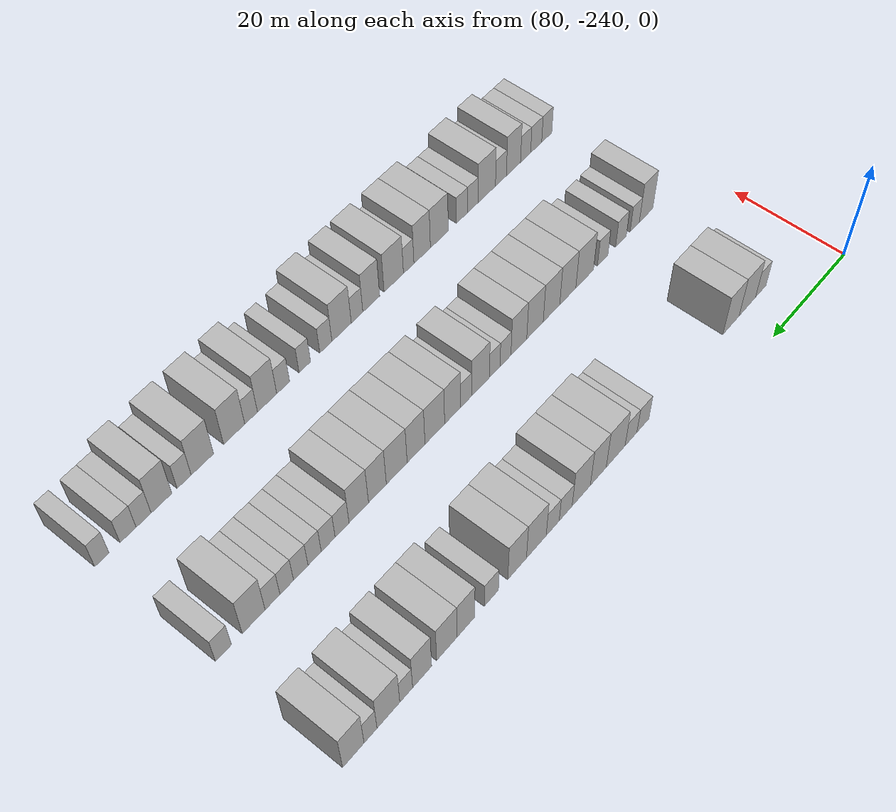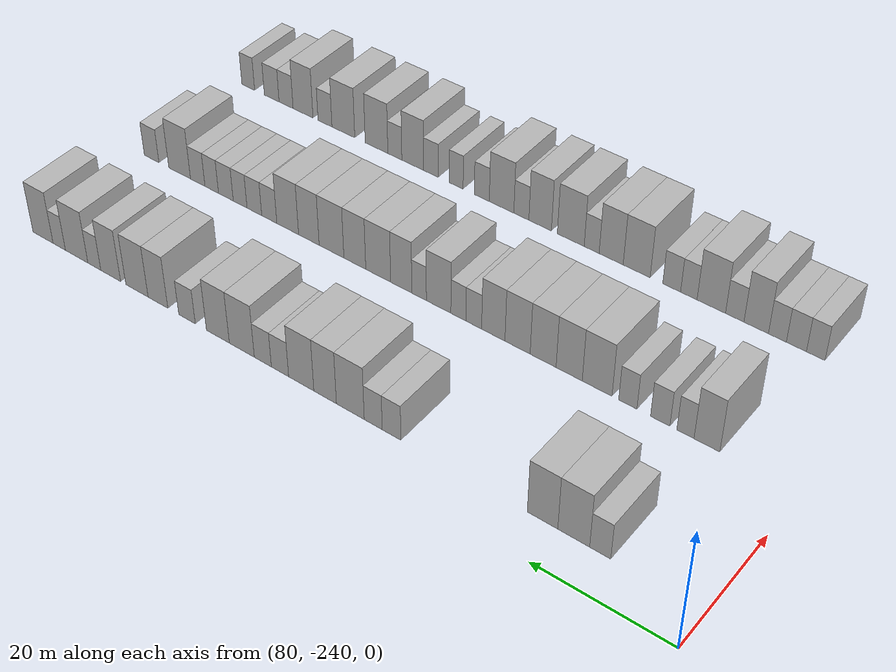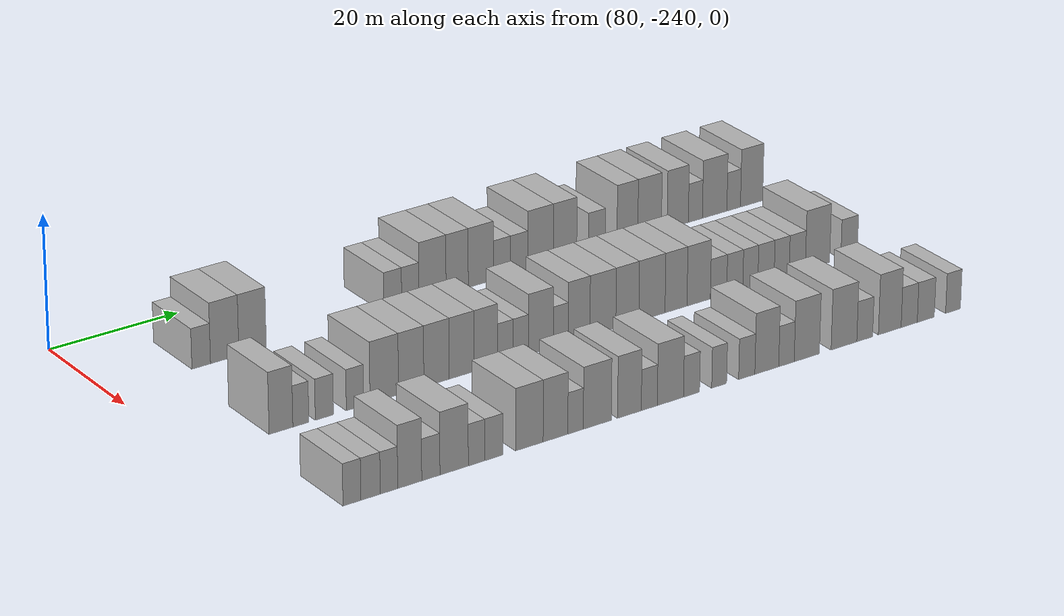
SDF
<sdf version="1.6">
 <world name="default">
  <model name="building_606">
   <static>1</static>
   <pose>91.0000 -225.8496 0 0.000000 0.000000 0.000000</pose>
   <link name="link">
    <pose>0 0 3.00 0 0 0</pose>
    <collision name="collision"><geometry><box><size>10.0000 2.8983 6.0000</size></box></geometry></collision>
    <visual name="visual">
     <cast_shadows>0</cast_shadows>
     <geometry><box><size>10.0000 2.8983 6.0000</size></box></geometry>
     <material>
      <script>
       <uri>model://HANNAS_wall/materials/scripts</uri>
       <uri>model://HANNAS_wall/materials/textures</uri>
       <name>vrc/HANNAS_wall</name>
      </script>
     </material>
    </visual>
   </link>
  </model>
  <model name="building_607">
   <static>1</static>
   <pose>91.0000 -222.1751 0 0.000000 0.000000 0.000000</pose>
   <link name="link">
    <pose>0 0 4.50 0 0 0</pose>
    <collision name="collision"><geometry><box><size>10.0000 4.4507 9.0000</size></box></geometry></collision>
    <visual name="visual">
     <cast_shadows>0</cast_shadows>
     <geometry><box><size>10.0000 4.4507 9.0000</size></box></geometry>
     <material>
      <script>
       <uri>model://HANNAS_wall/materials/scripts</uri>
       <uri>model://HANNAS_wall/materials/textures</uri>
       <name>vrc/HANNAS_wall</name>
      </script>
     </material>
    </visual>
   </link>
  </model>
  <model name="building_608">
   <static>1</static>
   <pose>91.0000 -217.7797 0 0.000000 0.000000 0.000000</pose>
   <link name="link">
    <pose>0 0 4.50 0 0 0</pose>
    <collision name="collision"><geometry><box><size>10.0000 4.3403 9.0000</size></box></geometry></collision>
    <visual name="visual">
     <cast_shadows>0</cast_shadows>
     <geometry><box><size>10.0000 4.3403 9.0000</size></box></geometry>
     <material>
      <script>
       <uri>model://HANNAS_wall/materials/scripts</uri>
       <uri>model://HANNAS_wall/materials/textures</uri>
       <name>vrc/HANNAS_wall</name>
      </script>
     </material>
    </visual>
   </link>
  </model>
  <model name="building_609">
   <static>1</static>
   <pose>91.0000 -195.2096 0 0.000000 0.000000 0.000000</pose>
   <link name="link">
    <pose>0 0 3.00 0 0 0</pose>
    <collision name="collision"><geometry><box><size>10.0000 2.9333 6.0000</size></box></geometry></collision>
    <visual name="visual">
     <cast_shadows>0</cast_shadows>
     <geometry><box><size>10.0000 2.9333 6.0000</size></box></geometry>
     <material>
      <script>
       <uri>model://HANNAS_wall/materials/scripts</uri>
       <uri>model://HANNAS_wall/materials/textures</uri>
       <name>vrc/HANNAS_wall</name>
      </script>
     </material>
    </visual>
   </link>
  </model>
  <model name="building_610">
   <static>1</static>
   <pose>91.0000 -192.3153 0 0.000000 0.000000 0.000000</pose>
   <link name="link">
    <pose>0 0 3.00 0 0 0</pose>
    <collision name="collision"><geometry><box><size>10.0000 2.8555 6.0000</size></box></geometry></collision>
    <visual name="visual">
     <cast_shadows>0</cast_shadows>
     <geometry><box><size>10.0000 2.8555 6.0000</size></box></geometry>
     <material>
      <script>
       <uri>model://HANNAS_wall/materials/scripts</uri>
       <uri>model://HANNAS_wall/materials/textures</uri>
       <name>vrc/HANNAS_wall</name>
      </script>
     </material>
    </visual>
   </link>
  </model>
  <model name="building_611">
   <static>1</static>
   <pose>91.0000 -188.6428 0 0.000000 0.000000 0.000000</pose>
   <link name="link">
    <pose>0 0 4.50 0 0 0</pose>
    <collision name="collision"><geometry><box><size>10.0000 4.4893 9.0000</size></box></geometry></collision>
    <visual name="visual">
     <cast_shadows>0</cast_shadows>
     <geometry><box><size>10.0000 4.4893 9.0000</size></box></geometry>
     <material>
      <script>
       <uri>model://HANNAS_wall/materials/scripts</uri>
       <uri>model://HANNAS_wall/materials/textures</uri>
       <name>vrc/HANNAS_wall</name>
      </script>
     </material>
    </visual>
   </link>
  </model>
  <model name="building_612">
   <static>1</static>
   <pose>91.0000 -184.5450 0 0.000000 0.000000 0.000000</pose>
   <link name="link">
    <pose>0 0 4.50 0 0 0</pose>
    <collision name="collision"><geometry><box><size>10.0000 3.7064 9.0000</size></box></geometry></collision>
    <visual name="visual">
     <cast_shadows>0</cast_shadows>
     <geometry><box><size>10.0000 3.7064 9.0000</size></box></geometry>
     <material>
      <script>
       <uri>model://HANNAS_wall/materials/scripts</uri>
       <uri>model://HANNAS_wall/materials/textures</uri>
       <name>vrc/HANNAS_wall</name>
      </script>
     </material>
    </visual>
   </link>
  </model>
  <model name="building_613">
   <static>1</static>
   <pose>91.0000 -180.5908 0 0.000000 0.000000 0.000000</pose>
   <link name="link">
    <pose>0 0 4.50 0 0 0</pose>
    <collision name="collision"><geometry><box><size>10.0000 4.2019 9.0000</size></box></geometry></collision>
    <visual name="visual">
     <cast_shadows>0</cast_shadows>
     <geometry><box><size>10.0000 4.2019 9.0000</size></box></geometry>
     <material>
      <script>
       <uri>model://HANNAS_wall/materials/scripts</uri>
       <uri>model://HANNAS_wall/materials/textures</uri>
       <name>vrc/HANNAS_wall</name>
      </script>
     </material>
    </visual>
   </link>
  </model>
  <model name="building_614">
   <static>1</static>
   <pose>91.0000 -177.0286 0 0.000000 0.000000 0.000000</pose>
   <link name="link">
    <pose>0 0 3.00 0 0 0</pose>
    <collision name="collision"><geometry><box><size>10.0000 2.9226 6.0000</size></box></geometry></collision>
    <visual name="visual">
     <cast_shadows>0</cast_shadows>
     <geometry><box><size>10.0000 2.9226 6.0000</size></box></geometry>
     <material>
      <script>
       <uri>model://HANNAS_wall/materials/scripts</uri>
       <uri>model://HANNAS_wall/materials/textures</uri>
       <name>vrc/HANNAS_wall</name>
      </script>
     </material>
    </visual>
   </link>
  </model>
  <model name="building_615">
   <static>1</static>
   <pose>91.0000 -174.1102 0 0.000000 0.000000 0.000000</pose>
   <link name="link">
    <pose>0 0 3.00 0 0 0</pose>
    <collision name="collision"><geometry><box><size>10.0000 2.9143 6.0000</size></box></geometry></collision>
    <visual name="visual">
     <cast_shadows>0</cast_shadows>
     <geometry><box><size>10.0000 2.9143 6.0000</size></box></geometry>
     <material>
      <script>
       <uri>model://HANNAS_wall/materials/scripts</uri>
       <uri>model://HANNAS_wall/materials/textures</uri>
       <name>vrc/HANNAS_wall</name>
      </script>
     </material>
    </visual>
   </link>
  </model>
  <model name="building_616">
   <static>1</static>
   <pose>91.0000 -170.4799 0 0.000000 0.000000 0.000000</pose>
   <link name="link">
    <pose>0 0 4.50 0 0 0</pose>
    <collision name="collision"><geometry><box><size>10.0000 4.3464 9.0000</size></box></geometry></collision>
    <visual name="visual">
     <cast_shadows>0</cast_shadows>
     <geometry><box><size>10.0000 4.3464 9.0000</size></box></geometry>
     <material>
      <script>
       <uri>model://HANNAS_wall/materials/scripts</uri>
       <uri>model://HANNAS_wall/materials/textures</uri>
       <name>vrc/HANNAS_wall</name>
      </script>
     </material>
    </visual>
   </link>
  </model>
  <model name="building_617">
   <static>1</static>
   <pose>91.0000 -166.2850 0 0.000000 0.000000 0.000000</pose>
   <link name="link">
    <pose>0 0 4.50 0 0 0</pose>
    <collision name="collision"><geometry><box><size>10.0000 4.0434 9.0000</size></box></geometry></collision>
    <visual name="visual">
     <cast_shadows>0</cast_shadows>
     <geometry><box><size>10.0000 4.0434 9.0000</size></box></geometry>
     <material>
      <script>
       <uri>model://HANNAS_wall/materials/scripts</uri>
       <uri>model://HANNAS_wall/materials/textures</uri>
       <name>vrc/HANNAS_wall</name>
      </script>
     </material>
    </visual>
   </link>
  </model>
  <model name="building_618">
   <static>1</static>
   <pose>91.0000 -160.7762 0 0.000000 0.000000 0.000000</pose>
   <link name="link">
    <pose>0 0 3.00 0 0 0</pose>
    <collision name="collision"><geometry><box><size>10.0000 2.9742 6.0000</size></box></geometry></collision>
    <visual name="visual">
     <cast_shadows>0</cast_shadows>
     <geometry><box><size>10.0000 2.9742 6.0000</size></box></geometry>
     <material>
      <script>
       <uri>model://HANNAS_wall/materials/scripts</uri>
       <uri>model://HANNAS_wall/materials/textures</uri>
       <name>vrc/HANNAS_wall</name>
      </script>
     </material>
    </visual>
   </link>
  </model>
  <model name="building_619">
   <static>1</static>
   <pose>91.0000 -155.4696 0 0.000000 0.000000 0.000000</pose>
   <link name="link">
    <pose>0 0 4.50 0 0 0</pose>
    <collision name="collision"><geometry><box><size>10.0000 3.6389 9.0000</size></box></geometry></collision>
    <visual name="visual">
     <cast_shadows>0</cast_shadows>
     <geometry><box><size>10.0000 3.6389 9.0000</size></box></geometry>
     <material>
      <script>
       <uri>model://HANNAS_wall/materials/scripts</uri>
       <uri>model://HANNAS_wall/materials/textures</uri>
       <name>vrc/HANNAS_wall</name>
      </script>
     </material>
    </visual>
   </link>
  </model>
  <model name="building_620">
   <static>1</static>
   <pose>91.0000 -151.5705 0 0.000000 0.000000 0.000000</pose>
   <link name="link">
    <pose>0 0 4.50 0 0 0</pose>
    <collision name="collision"><geometry><box><size>10.0000 4.1593 9.0000</size></box></geometry></collision>
    <visual name="visual">
     <cast_shadows>0</cast_shadows>
     <geometry><box><size>10.0000 4.1593 9.0000</size></box></geometry>
     <material>
      <script>
       <uri>model://HANNAS_wall/materials/scripts</uri>
       <uri>model://HANNAS_wall/materials/textures</uri>
       <name>vrc/HANNAS_wall</name>
      </script>
     </material>
    </visual>
   </link>
  </model>
  <model name="building_621">
   <static>1</static>
   <pose>91.0000 -146.6059 0 0.000000 0.000000 0.000000</pose>
   <link name="link">
    <pose>0 0 4.50 0 0 0</pose>
    <collision name="collision"><geometry><box><size>10.0000 3.7700 9.0000</size></box></geometry></collision>
    <visual name="visual">
     <cast_shadows>0</cast_shadows>
     <geometry><box><size>10.0000 3.7700 9.0000</size></box></geometry>
     <material>
      <script>
       <uri>model://HANNAS_wall/materials/scripts</uri>
       <uri>model://HANNAS_wall/materials/textures</uri>
       <name>vrc/HANNAS_wall</name>
      </script>
     </material>
    </visual>
   </link>
  </model>
  <model name="building_622">
   <static>1</static>
   <pose>91.0000 -143.4694 0 0.000000 0.000000 0.000000</pose>
   <link name="link">
    <pose>0 0 3.00 0 0 0</pose>
    <collision name="collision"><geometry><box><size>10.0000 2.5030 6.0000</size></box></geometry></collision>
    <visual name="visual">
     <cast_shadows>0</cast_shadows>
     <geometry><box><size>10.0000 2.5030 6.0000</size></box></geometry>
     <material>
      <script>
       <uri>model://HANNAS_wall/materials/scripts</uri>
       <uri>model://HANNAS_wall/materials/textures</uri>
       <name>vrc/HANNAS_wall</name>
      </script>
     </material>
    </visual>
   </link>
  </model>
  <model name="building_623">
   <static>1</static>
   <pose>91.0000 -140.0220 0 0.000000 0.000000 0.000000</pose>
   <link name="link">
    <pose>0 0 4.50 0 0 0</pose>
    <collision name="collision"><geometry><box><size>10.0000 4.3918 9.0000</size></box></geometry></collision>
    <visual name="visual">
     <cast_shadows>0</cast_shadows>
     <geometry><box><size>10.0000 4.3918 9.0000</size></box></geometry>
     <material>
      <script>
       <uri>model://HANNAS_wall/materials/scripts</uri>
       <uri>model://HANNAS_wall/materials/textures</uri>
       <name>vrc/HANNAS_wall</name>
      </script>
     </material>
    </visual>
   </link>
  </model>
  <model name="building_624">
   <static>1</static>
   <pose>91.0000 -136.6012 0 0.000000 0.000000 0.000000</pose>
   <link name="link">
    <pose>0 0 3.00 0 0 0</pose>
    <collision name="collision"><geometry><box><size>10.0000 2.4499 6.0000</size></box></geometry></collision>
    <visual name="visual">
     <cast_shadows>0</cast_shadows>
     <geometry><box><size>10.0000 2.4499 6.0000</size></box></geometry>
     <material>
      <script>
       <uri>model://HANNAS_wall/materials/scripts</uri>
       <uri>model://HANNAS_wall/materials/textures</uri>
       <name>vrc/HANNAS_wall</name>
      </script>
     </material>
    </visual>
   </link>
  </model>
  <model name="building_625">
   <static>1</static>
   <pose>91.0000 -133.3682 0 0.000000 0.000000 0.000000</pose>
   <link name="link">
    <pose>0 0 4.50 0 0 0</pose>
    <collision name="collision"><geometry><box><size>10.0000 4.0160 9.0000</size></box></geometry></collision>
    <visual name="visual">
     <cast_shadows>0</cast_shadows>
     <geometry><box><size>10.0000 4.0160 9.0000</size></box></geometry>
     <material>
      <script>
       <uri>model://HANNAS_wall/materials/scripts</uri>
       <uri>model://HANNAS_wall/materials/textures</uri>
       <name>vrc/HANNAS_wall</name>
      </script>
     </material>
    </visual>
   </link>
  </model>
  <model name="building_788">
   <static>1</static>
   <pose>113.0000 -227.0930 0 0.000000 0.000000 0.000000</pose>
   <link name="link">
    <pose>0 0 4.50 0 0 0</pose>
    <collision name="collision"><geometry><box><size>10.0000 3.6474 9.0000</size></box></geometry></collision>
    <visual name="visual">
     <cast_shadows>0</cast_shadows>
     <geometry><box><size>10.0000 3.6474 9.0000</size></box></geometry>
     <material>
      <script>
       <uri>model://HANNAS_wall/materials/scripts</uri>
       <uri>model://HANNAS_wall/materials/textures</uri>
       <name>vrc/HANNAS_wall</name>
      </script>
     </material>
    </visual>
   </link>
  </model>
  <model name="building_789">
   <static>1</static>
   <pose>113.0000 -224.0395 0 0.000000 0.000000 0.000000</pose>
   <link name="link">
    <pose>0 0 3.00 0 0 0</pose>
    <collision name="collision"><geometry><box><size>10.0000 2.4596 6.0000</size></box></geometry></collision>
    <visual name="visual">
     <cast_shadows>0</cast_shadows>
     <geometry><box><size>10.0000 2.4596 6.0000</size></box></geometry>
     <material>
      <script>
       <uri>model://HANNAS_wall/materials/scripts</uri>
       <uri>model://HANNAS_wall/materials/textures</uri>
       <name>vrc/HANNAS_wall</name>
      </script>
     </material>
    </visual>
   </link>
  </model>
  <model name="building_790">
   <static>1</static>
   <pose>113.0000 -220.4027 0 0.000000 0.000000 0.000000</pose>
   <link name="link">
    <pose>0 0 3.00 0 0 0</pose>
    <collision name="collision"><geometry><box><size>10.0000 2.8141 6.0000</size></box></geometry></collision>
    <visual name="visual">
     <cast_shadows>0</cast_shadows>
     <geometry><box><size>10.0000 2.8141 6.0000</size></box></geometry>
     <material>
      <script>
       <uri>model://HANNAS_wall/materials/scripts</uri>
       <uri>model://HANNAS_wall/materials/textures</uri>
       <name>vrc/HANNAS_wall</name>
      </script>
     </material>
    </visual>
   </link>
  </model>
  <model name="building_791">
   <static>1</static>
   <pose>113.0000 -215.6435 0 0.000000 0.000000 0.000000</pose>
   <link name="link">
    <pose>0 0 3.00 0 0 0</pose>
    <collision name="collision"><geometry><box><size>10.0000 2.7042 6.0000</size></box></geometry></collision>
    <visual name="visual">
     <cast_shadows>0</cast_shadows>
     <geometry><box><size>10.0000 2.7042 6.0000</size></box></geometry>
     <material>
      <script>
       <uri>model://HANNAS_wall/materials/scripts</uri>
       <uri>model://HANNAS_wall/materials/textures</uri>
       <name>vrc/HANNAS_wall</name>
      </script>
     </material>
    </visual>
   </link>
  </model>
  <model name="building_792">
   <static>1</static>
   <pose>113.0000 -211.0419 0 0.000000 0.000000 0.000000</pose>
   <link name="link">
    <pose>0 0 4.50 0 0 0</pose>
    <collision name="collision"><geometry><box><size>10.0000 4.4990 9.0000</size></box></geometry></collision>
    <visual name="visual">
     <cast_shadows>0</cast_shadows>
     <geometry><box><size>10.0000 4.4990 9.0000</size></box></geometry>
     <material>
      <script>
       <uri>model://HANNAS_wall/materials/scripts</uri>
       <uri>model://HANNAS_wall/materials/textures</uri>
       <name>vrc/HANNAS_wall</name>
      </script>
     </material>
    </visual>
   </link>
  </model>
  <model name="building_793">
   <static>1</static>
   <pose>113.0000 -206.7819 0 0.000000 0.000000 0.000000</pose>
   <link name="link">
    <pose>0 0 4.50 0 0 0</pose>
    <collision name="collision"><geometry><box><size>10.0000 4.0210 9.0000</size></box></geometry></collision>
    <visual name="visual">
     <cast_shadows>0</cast_shadows>
     <geometry><box><size>10.0000 4.0210 9.0000</size></box></geometry>
     <material>
      <script>
       <uri>model://HANNAS_wall/materials/scripts</uri>
       <uri>model://HANNAS_wall/materials/textures</uri>
       <name>vrc/HANNAS_wall</name>
      </script>
     </material>
    </visual>
   </link>
  </model>
  <model name="building_794">
   <static>1</static>
   <pose>113.0000 -202.7452 0 0.000000 0.000000 0.000000</pose>
   <link name="link">
    <pose>0 0 4.50 0 0 0</pose>
    <collision name="collision"><geometry><box><size>10.0000 4.0525 9.0000</size></box></geometry></collision>
    <visual name="visual">
     <cast_shadows>0</cast_shadows>
     <geometry><box><size>10.0000 4.0525 9.0000</size></box></geometry>
     <material>
      <script>
       <uri>model://HANNAS_wall/materials/scripts</uri>
       <uri>model://HANNAS_wall/materials/textures</uri>
       <name>vrc/HANNAS_wall</name>
      </script>
     </material>
    </visual>
   </link>
  </model>
  <model name="building_795">
   <static>1</static>
   <pose>113.0000 -198.7182 0 0.000000 0.000000 0.000000</pose>
   <link name="link">
    <pose>0 0 4.50 0 0 0</pose>
    <collision name="collision"><geometry><box><size>10.0000 4.0014 9.0000</size></box></geometry></collision>
    <visual name="visual">
     <cast_shadows>0</cast_shadows>
     <geometry><box><size>10.0000 4.0014 9.0000</size></box></geometry>
     <material>
      <script>
       <uri>model://HANNAS_wall/materials/scripts</uri>
       <uri>model://HANNAS_wall/materials/textures</uri>
       <name>vrc/HANNAS_wall</name>
      </script>
     </material>
    </visual>
   </link>
  </model>
  <model name="building_796">
   <static>1</static>
   <pose>113.0000 -194.8335 0 0.000000 0.000000 0.000000</pose>
   <link name="link">
    <pose>0 0 4.50 0 0 0</pose>
    <collision name="collision"><geometry><box><size>10.0000 3.7681 9.0000</size></box></geometry></collision>
    <visual name="visual">
     <cast_shadows>0</cast_shadows>
     <geometry><box><size>10.0000 3.7681 9.0000</size></box></geometry>
     <material>
      <script>
       <uri>model://HANNAS_wall/materials/scripts</uri>
       <uri>model://HANNAS_wall/materials/textures</uri>
       <name>vrc/HANNAS_wall</name>
      </script>
     </material>
    </visual>
   </link>
  </model>
  <model name="building_797">
   <static>1</static>
   <pose>113.0000 -191.6671 0 0.000000 0.000000 0.000000</pose>
   <link name="link">
    <pose>0 0 3.00 0 0 0</pose>
    <collision name="collision"><geometry><box><size>10.0000 2.5647 6.0000</size></box></geometry></collision>
    <visual name="visual">
     <cast_shadows>0</cast_shadows>
     <geometry><box><size>10.0000 2.5647 6.0000</size></box></geometry>
     <material>
      <script>
       <uri>model://HANNAS_wall/materials/scripts</uri>
       <uri>model://HANNAS_wall/materials/textures</uri>
       <name>vrc/HANNAS_wall</name>
      </script>
     </material>
    </visual>
   </link>
  </model>
  <model name="building_798">
   <static>1</static>
   <pose>113.0000 -189.1446 0 0.000000 0.000000 0.000000</pose>
   <link name="link">
    <pose>0 0 3.00 0 0 0</pose>
    <collision name="collision"><geometry><box><size>10.0000 2.4802 6.0000</size></box></geometry></collision>
    <visual name="visual">
     <cast_shadows>0</cast_shadows>
     <geometry><box><size>10.0000 2.4802 6.0000</size></box></geometry>
     <material>
      <script>
       <uri>model://HANNAS_wall/materials/scripts</uri>
       <uri>model://HANNAS_wall/materials/textures</uri>
       <name>vrc/HANNAS_wall</name>
      </script>
     </material>
    </visual>
   </link>
  </model>
  <model name="building_799">
   <static>1</static>
   <pose>113.0000 -185.8582 0 0.000000 0.000000 0.000000</pose>
   <link name="link">
    <pose>0 0 4.50 0 0 0</pose>
    <collision name="collision"><geometry><box><size>10.0000 4.0926 9.0000</size></box></geometry></collision>
    <visual name="visual">
     <cast_shadows>0</cast_shadows>
     <geometry><box><size>10.0000 4.0926 9.0000</size></box></geometry>
     <material>
      <script>
       <uri>model://HANNAS_wall/materials/scripts</uri>
       <uri>model://HANNAS_wall/materials/textures</uri>
       <name>vrc/HANNAS_wall</name>
      </script>
     </material>
    </visual>
   </link>
  </model>
  <model name="building_800">
   <static>1</static>
   <pose>113.0000 -182.5808 0 0.000000 0.000000 0.000000</pose>
   <link name="link">
    <pose>0 0 3.00 0 0 0</pose>
    <collision name="collision"><geometry><box><size>10.0000 2.4622 6.0000</size></box></geometry></collision>
    <visual name="visual">
     <cast_shadows>0</cast_shadows>
     <geometry><box><size>10.0000 2.4622 6.0000</size></box></geometry>
     <material>
      <script>
       <uri>model://HANNAS_wall/materials/scripts</uri>
       <uri>model://HANNAS_wall/materials/textures</uri>
       <name>vrc/HANNAS_wall</name>
      </script>
     </material>
    </visual>
   </link>
  </model>
  <model name="building_801">
   <static>1</static>
   <pose>113.0000 -179.5428 0 0.000000 0.000000 0.000000</pose>
   <link name="link">
    <pose>0 0 4.50 0 0 0</pose>
    <collision name="collision"><geometry><box><size>10.0000 3.6139 9.0000</size></box></geometry></collision>
    <visual name="visual">
     <cast_shadows>0</cast_shadows>
     <geometry><box><size>10.0000 3.6139 9.0000</size></box></geometry>
     <material>
      <script>
       <uri>model://HANNAS_wall/materials/scripts</uri>
       <uri>model://HANNAS_wall/materials/textures</uri>
       <name>vrc/HANNAS_wall</name>
      </script>
     </material>
    </visual>
   </link>
  </model>
  <model name="building_802">
   <static>1</static>
   <pose>113.0000 -175.5697 0 0.000000 0.000000 0.000000</pose>
   <link name="link">
    <pose>0 0 4.50 0 0 0</pose>
    <collision name="collision"><geometry><box><size>10.0000 4.3322 9.0000</size></box></geometry></collision>
    <visual name="visual">
     <cast_shadows>0</cast_shadows>
     <geometry><box><size>10.0000 4.3322 9.0000</size></box></geometry>
     <material>
      <script>
       <uri>model://HANNAS_wall/materials/scripts</uri>
       <uri>model://HANNAS_wall/materials/textures</uri>
       <name>vrc/HANNAS_wall</name>
      </script>
     </material>
    </visual>
   </link>
  </model>
  <model name="building_803">
   <static>1</static>
   <pose>113.0000 -171.4725 0 0.000000 0.000000 0.000000</pose>
   <link name="link">
    <pose>0 0 4.50 0 0 0</pose>
    <collision name="collision"><geometry><box><size>10.0000 3.8622 9.0000</size></box></geometry></collision>
    <visual name="visual">
     <cast_shadows>0</cast_shadows>
     <geometry><box><size>10.0000 3.8622 9.0000</size></box></geometry>
     <material>
      <script>
       <uri>model://HANNAS_wall/materials/scripts</uri>
       <uri>model://HANNAS_wall/materials/textures</uri>
       <name>vrc/HANNAS_wall</name>
      </script>
     </material>
    </visual>
   </link>
  </model>
  <model name="building_804">
   <static>1</static>
   <pose>113.0000 -167.3219 0 0.000000 0.000000 0.000000</pose>
   <link name="link">
    <pose>0 0 4.50 0 0 0</pose>
    <collision name="collision"><geometry><box><size>10.0000 4.4390 9.0000</size></box></geometry></collision>
    <visual name="visual">
     <cast_shadows>0</cast_shadows>
     <geometry><box><size>10.0000 4.4390 9.0000</size></box></geometry>
     <material>
      <script>
       <uri>model://HANNAS_wall/materials/scripts</uri>
       <uri>model://HANNAS_wall/materials/textures</uri>
       <name>vrc/HANNAS_wall</name>
      </script>
     </material>
    </visual>
   </link>
  </model>
  <model name="building_805">
   <static>1</static>
   <pose>113.0000 -163.2300 0 0.000000 0.000000 0.000000</pose>
   <link name="link">
    <pose>0 0 4.50 0 0 0</pose>
    <collision name="collision"><geometry><box><size>10.0000 3.7448 9.0000</size></box></geometry></collision>
    <visual name="visual">
     <cast_shadows>0</cast_shadows>
     <geometry><box><size>10.0000 3.7448 9.0000</size></box></geometry>
     <material>
      <script>
       <uri>model://HANNAS_wall/materials/scripts</uri>
       <uri>model://HANNAS_wall/materials/textures</uri>
       <name>vrc/HANNAS_wall</name>
      </script>
     </material>
    </visual>
   </link>
  </model>
  <model name="building_806">
   <static>1</static>
   <pose>113.0000 -159.3473 0 0.000000 0.000000 0.000000</pose>
   <link name="link">
    <pose>0 0 4.50 0 0 0</pose>
    <collision name="collision"><geometry><box><size>10.0000 4.0207 9.0000</size></box></geometry></collision>
    <visual name="visual">
     <cast_shadows>0</cast_shadows>
     <geometry><box><size>10.0000 4.0207 9.0000</size></box></geometry>
     <material>
      <script>
       <uri>model://HANNAS_wall/materials/scripts</uri>
       <uri>model://HANNAS_wall/materials/textures</uri>
       <name>vrc/HANNAS_wall</name>
      </script>
     </material>
    </visual>
   </link>
  </model>
  <model name="building_807">
   <static>1</static>
   <pose>113.0000 -155.9247 0 0.000000 0.000000 0.000000</pose>
   <link name="link">
    <pose>0 0 3.00 0 0 0</pose>
    <collision name="collision"><geometry><box><size>10.0000 2.8244 6.0000</size></box></geometry></collision>
    <visual name="visual">
     <cast_shadows>0</cast_shadows>
     <geometry><box><size>10.0000 2.8244 6.0000</size></box></geometry>
     <material>
      <script>
       <uri>model://HANNAS_wall/materials/scripts</uri>
       <uri>model://HANNAS_wall/materials/textures</uri>
       <name>vrc/HANNAS_wall</name>
      </script>
     </material>
    </visual>
   </link>
  </model>
  <model name="building_808">
   <static>1</static>
   <pose>113.0000 -153.1203 0 0.000000 0.000000 0.000000</pose>
   <link name="link">
    <pose>0 0 3.00 0 0 0</pose>
    <collision name="collision"><geometry><box><size>10.0000 2.7845 6.0000</size></box></geometry></collision>
    <visual name="visual">
     <cast_shadows>0</cast_shadows>
     <geometry><box><size>10.0000 2.7845 6.0000</size></box></geometry>
     <material>
      <script>
       <uri>model://HANNAS_wall/materials/scripts</uri>
       <uri>model://HANNAS_wall/materials/textures</uri>
       <name>vrc/HANNAS_wall</name>
      </script>
     </material>
    </visual>
   </link>
  </model>
  <model name="building_809">
   <static>1</static>
   <pose>113.0000 -150.4151 0 0.000000 0.000000 0.000000</pose>
   <link name="link">
    <pose>0 0 3.00 0 0 0</pose>
    <collision name="collision"><geometry><box><size>10.0000 2.6260 6.0000</size></box></geometry></collision>
    <visual name="visual">
     <cast_shadows>0</cast_shadows>
     <geometry><box><size>10.0000 2.6260 6.0000</size></box></geometry>
     <material>
      <script>
       <uri>model://HANNAS_wall/materials/scripts</uri>
       <uri>model://HANNAS_wall/materials/textures</uri>
       <name>vrc/HANNAS_wall</name>
      </script>
     </material>
    </visual>
   </link>
  </model>
  <model name="building_810">
   <static>1</static>
   <pose>113.0000 -147.6799 0 0.000000 0.000000 0.000000</pose>
   <link name="link">
    <pose>0 0 3.00 0 0 0</pose>
    <collision name="collision"><geometry><box><size>10.0000 2.8444 6.0000</size></box></geometry></collision>
    <visual name="visual">
     <cast_shadows>0</cast_shadows>
     <geometry><box><size>10.0000 2.8444 6.0000</size></box></geometry>
     <material>
      <script>
       <uri>model://HANNAS_wall/materials/scripts</uri>
       <uri>model://HANNAS_wall/materials/textures</uri>
       <name>vrc/HANNAS_wall</name>
      </script>
     </material>
    </visual>
   </link>
  </model>
  <model name="building_811">
   <static>1</static>
   <pose>113.0000 -144.9382 0 0.000000 0.000000 0.000000</pose>
   <link name="link">
    <pose>0 0 3.00 0 0 0</pose>
    <collision name="collision"><geometry><box><size>10.0000 2.6389 6.0000</size></box></geometry></collision>
    <visual name="visual">
     <cast_shadows>0</cast_shadows>
     <geometry><box><size>10.0000 2.6389 6.0000</size></box></geometry>
     <material>
      <script>
       <uri>model://HANNAS_wall/materials/scripts</uri>
       <uri>model://HANNAS_wall/materials/textures</uri>
       <name>vrc/HANNAS_wall</name>
      </script>
     </material>
    </visual>
   </link>
  </model>
  <model name="building_812">
   <static>1</static>
   <pose>113.0000 -142.1960 0 0.000000 0.000000 0.000000</pose>
   <link name="link">
    <pose>0 0 3.00 0 0 0</pose>
    <collision name="collision"><geometry><box><size>10.0000 2.8456 6.0000</size></box></geometry></collision>
    <visual name="visual">
     <cast_shadows>0</cast_shadows>
     <geometry><box><size>10.0000 2.8456 6.0000</size></box></geometry>
     <material>
      <script>
       <uri>model://HANNAS_wall/materials/scripts</uri>
       <uri>model://HANNAS_wall/materials/textures</uri>
       <name>vrc/HANNAS_wall</name>
      </script>
     </material>
    </visual>
   </link>
  </model>
  <model name="building_813">
   <static>1</static>
   <pose>113.0000 -138.6110 0 0.000000 0.000000 0.000000</pose>
   <link name="link">
    <pose>0 0 4.50 0 0 0</pose>
    <collision name="collision"><geometry><box><size>10.0000 4.3245 9.0000</size></box></geometry></collision>
    <visual name="visual">
     <cast_shadows>0</cast_shadows>
     <geometry><box><size>10.0000 4.3245 9.0000</size></box></geometry>
     <material>
      <script>
       <uri>model://HANNAS_wall/materials/scripts</uri>
       <uri>model://HANNAS_wall/materials/textures</uri>
       <name>vrc/HANNAS_wall</name>
      </script>
     </material>
    </visual>
   </link>
  </model>
  <model name="building_814">
   <static>1</static>
   <pose>113.0000 -132.9697 0 0.000000 0.000000 0.000000</pose>
   <link name="link">
    <pose>0 0 3.00 0 0 0</pose>
    <collision name="collision"><geometry><box><size>10.0000 2.9579 6.0000</size></box></geometry></collision>
    <visual name="visual">
     <cast_shadows>0</cast_shadows>
     <geometry><box><size>10.0000 2.9579 6.0000</size></box></geometry>
     <material>
      <script>
       <uri>model://HANNAS_wall/materials/scripts</uri>
       <uri>model://HANNAS_wall/materials/textures</uri>
       <name>vrc/HANNAS_wall</name>
      </script>
     </material>
    </visual>
   </link>
  </model>
  <model name="building_962">
   <static>1</static>
   <pose>135.0000 -230.3620 0 0.000000 0.000000 0.000000</pose>
   <link name="link">
    <pose>0 0 3.00 0 0 0</pose>
    <collision name="collision"><geometry><box><size>10.0000 2.6859 6.0000</size></box></geometry></collision>
    <visual name="visual">
     <cast_shadows>0</cast_shadows>
     <geometry><box><size>10.0000 2.6859 6.0000</size></box></geometry>
     <material>
      <script>
       <uri>model://HANNAS_wall/materials/scripts</uri>
       <uri>model://HANNAS_wall/materials/textures</uri>
       <name>vrc/HANNAS_wall</name>
      </script>
     </material>
    </visual>
   </link>
  </model>
  <model name="building_963">
   <static>1</static>
   <pose>135.0000 -227.5557 0 0.000000 0.000000 0.000000</pose>
   <link name="link">
    <pose>0 0 3.00 0 0 0</pose>
    <collision name="collision"><geometry><box><size>10.0000 2.9265 6.0000</size></box></geometry></collision>
    <visual name="visual">
     <cast_shadows>0</cast_shadows>
     <geometry><box><size>10.0000 2.9265 6.0000</size></box></geometry>
     <material>
      <script>
       <uri>model://HANNAS_wall/materials/scripts</uri>
       <uri>model://HANNAS_wall/materials/textures</uri>
       <name>vrc/HANNAS_wall</name>
      </script>
     </material>
    </visual>
   </link>
  </model>
  <model name="building_964">
   <static>1</static>
   <pose>135.0000 -224.7701 0 0.000000 0.000000 0.000000</pose>
   <link name="link">
    <pose>0 0 3.00 0 0 0</pose>
    <collision name="collision"><geometry><box><size>10.0000 2.6447 6.0000</size></box></geometry></collision>
    <visual name="visual">
     <cast_shadows>0</cast_shadows>
     <geometry><box><size>10.0000 2.6447 6.0000</size></box></geometry>
     <material>
      <script>
       <uri>model://HANNAS_wall/materials/scripts</uri>
       <uri>model://HANNAS_wall/materials/textures</uri>
       <name>vrc/HANNAS_wall</name>
      </script>
     </material>
    </visual>
   </link>
  </model>
  <model name="building_965">
   <static>1</static>
   <pose>135.0000 -221.6184 0 0.000000 0.000000 0.000000</pose>
   <link name="link">
    <pose>0 0 4.50 0 0 0</pose>
    <collision name="collision"><geometry><box><size>10.0000 3.6587 9.0000</size></box></geometry></collision>
    <visual name="visual">
     <cast_shadows>0</cast_shadows>
     <geometry><box><size>10.0000 3.6587 9.0000</size></box></geometry>
     <material>
      <script>
       <uri>model://HANNAS_wall/materials/scripts</uri>
       <uri>model://HANNAS_wall/materials/textures</uri>
       <name>vrc/HANNAS_wall</name>
      </script>
     </material>
    </visual>
   </link>
  </model>
  <model name="building_966">
   <static>1</static>
   <pose>135.0000 -218.3949 0 0.000000 0.000000 0.000000</pose>
   <link name="link">
    <pose>0 0 3.00 0 0 0</pose>
    <collision name="collision"><geometry><box><size>10.0000 2.7882 6.0000</size></box></geometry></collision>
    <visual name="visual">
     <cast_shadows>0</cast_shadows>
     <geometry><box><size>10.0000 2.7882 6.0000</size></box></geometry>
     <material>
      <script>
       <uri>model://HANNAS_wall/materials/scripts</uri>
       <uri>model://HANNAS_wall/materials/textures</uri>
       <name>vrc/HANNAS_wall</name>
      </script>
     </material>
    </visual>
   </link>
  </model>
  <model name="building_967">
   <static>1</static>
   <pose>135.0000 -214.8148 0 0.000000 0.000000 0.000000</pose>
   <link name="link">
    <pose>0 0 4.50 0 0 0</pose>
    <collision name="collision"><geometry><box><size>10.0000 4.3722 9.0000</size></box></geometry></collision>
    <visual name="visual">
     <cast_shadows>0</cast_shadows>
     <geometry><box><size>10.0000 4.3722 9.0000</size></box></geometry>
     <material>
      <script>
       <uri>model://HANNAS_wall/materials/scripts</uri>
       <uri>model://HANNAS_wall/materials/textures</uri>
       <name>vrc/HANNAS_wall</name>
      </script>
     </material>
    </visual>
   </link>
  </model>
  <model name="building_968">
   <static>1</static>
   <pose>135.0000 -211.3482 0 0.000000 0.000000 0.000000</pose>
   <link name="link">
    <pose>0 0 3.00 0 0 0</pose>
    <collision name="collision"><geometry><box><size>10.0000 2.5610 6.0000</size></box></geometry></collision>
    <visual name="visual">
     <cast_shadows>0</cast_shadows>
     <geometry><box><size>10.0000 2.5610 6.0000</size></box></geometry>
     <material>
      <script>
       <uri>model://HANNAS_wall/materials/scripts</uri>
       <uri>model://HANNAS_wall/materials/textures</uri>
       <name>vrc/HANNAS_wall</name>
      </script>
     </material>
    </visual>
   </link>
  </model>
  <model name="building_969">
   <static>1</static>
   <pose>135.0000 -208.6636 0 0.000000 0.000000 0.000000</pose>
   <link name="link">
    <pose>0 0 3.00 0 0 0</pose>
    <collision name="collision"><geometry><box><size>10.0000 2.8081 6.0000</size></box></geometry></collision>
    <visual name="visual">
     <cast_shadows>0</cast_shadows>
     <geometry><box><size>10.0000 2.8081 6.0000</size></box></geometry>
     <material>
      <script>
       <uri>model://HANNAS_wall/materials/scripts</uri>
       <uri>model://HANNAS_wall/materials/textures</uri>
       <name>vrc/HANNAS_wall</name>
      </script>
     </material>
    </visual>
   </link>
  </model>
  <model name="building_970">
   <static>1</static>
   <pose>135.0000 -203.0953 0 0.000000 0.000000 0.000000</pose>
   <link name="link">
    <pose>0 0 4.50 0 0 0</pose>
    <collision name="collision"><geometry><box><size>10.0000 4.3287 9.0000</size></box></geometry></collision>
    <visual name="visual">
     <cast_shadows>0</cast_shadows>
     <geometry><box><size>10.0000 4.3287 9.0000</size></box></geometry>
     <material>
      <script>
       <uri>model://HANNAS_wall/materials/scripts</uri>
       <uri>model://HANNAS_wall/materials/textures</uri>
       <name>vrc/HANNAS_wall</name>
      </script>
     </material>
    </visual>
   </link>
  </model>
  <model name="building_971">
   <static>1</static>
   <pose>135.0000 -198.9691 0 0.000000 0.000000 0.000000</pose>
   <link name="link">
    <pose>0 0 4.50 0 0 0</pose>
    <collision name="collision"><geometry><box><size>10.0000 3.9237 9.0000</size></box></geometry></collision>
    <visual name="visual">
     <cast_shadows>0</cast_shadows>
     <geometry><box><size>10.0000 3.9237 9.0000</size></box></geometry>
     <material>
      <script>
       <uri>model://HANNAS_wall/materials/scripts</uri>
       <uri>model://HANNAS_wall/materials/textures</uri>
       <name>vrc/HANNAS_wall</name>
      </script>
     </material>
    </visual>
   </link>
  </model>
  <model name="building_972">
   <static>1</static>
   <pose>135.0000 -195.7753 0 0.000000 0.000000 0.000000</pose>
   <link name="link">
    <pose>0 0 3.00 0 0 0</pose>
    <collision name="collision"><geometry><box><size>10.0000 2.4638 6.0000</size></box></geometry></collision>
    <visual name="visual">
     <cast_shadows>0</cast_shadows>
     <geometry><box><size>10.0000 2.4638 6.0000</size></box></geometry>
     <material>
      <script>
       <uri>model://HANNAS_wall/materials/scripts</uri>
       <uri>model://HANNAS_wall/materials/textures</uri>
       <name>vrc/HANNAS_wall</name>
      </script>
     </material>
    </visual>
   </link>
  </model>
  <model name="building_973">
   <static>1</static>
   <pose>135.0000 -192.2969 0 0.000000 0.000000 0.000000</pose>
   <link name="link">
    <pose>0 0 4.50 0 0 0</pose>
    <collision name="collision"><geometry><box><size>10.0000 4.4930 9.0000</size></box></geometry></collision>
    <visual name="visual">
     <cast_shadows>0</cast_shadows>
     <geometry><box><size>10.0000 4.4930 9.0000</size></box></geometry>
     <material>
      <script>
       <uri>model://HANNAS_wall/materials/scripts</uri>
       <uri>model://HANNAS_wall/materials/textures</uri>
       <name>vrc/HANNAS_wall</name>
      </script>
     </material>
    </visual>
   </link>
  </model>
  <model name="building_974">
   <static>1</static>
   <pose>135.0000 -187.1288 0 0.000000 0.000000 0.000000</pose>
   <link name="link">
    <pose>0 0 4.50 0 0 0</pose>
    <collision name="collision"><geometry><box><size>10.0000 3.8433 9.0000</size></box></geometry></collision>
    <visual name="visual">
     <cast_shadows>0</cast_shadows>
     <geometry><box><size>10.0000 3.8433 9.0000</size></box></geometry>
     <material>
      <script>
       <uri>model://HANNAS_wall/materials/scripts</uri>
       <uri>model://HANNAS_wall/materials/textures</uri>
       <name>vrc/HANNAS_wall</name>
      </script>
     </material>
    </visual>
   </link>
  </model>
  <model name="building_975">
   <static>1</static>
   <pose>135.0000 -183.9103 0 0.000000 0.000000 0.000000</pose>
   <link name="link">
    <pose>0 0 3.00 0 0 0</pose>
    <collision name="collision"><geometry><box><size>10.0000 2.5937 6.0000</size></box></geometry></collision>
    <visual name="visual">
     <cast_shadows>0</cast_shadows>
     <geometry><box><size>10.0000 2.5937 6.0000</size></box></geometry>
     <material>
      <script>
       <uri>model://HANNAS_wall/materials/scripts</uri>
       <uri>model://HANNAS_wall/materials/textures</uri>
       <name>vrc/HANNAS_wall</name>
      </script>
     </material>
    </visual>
   </link>
  </model>
  <model name="building_976">
   <static>1</static>
   <pose>135.0000 -180.4680 0 0.000000 0.000000 0.000000</pose>
   <link name="link">
    <pose>0 0 4.50 0 0 0</pose>
    <collision name="collision"><geometry><box><size>10.0000 4.2909 9.0000</size></box></geometry></collision>
    <visual name="visual">
     <cast_shadows>0</cast_shadows>
     <geometry><box><size>10.0000 4.2909 9.0000</size></box></geometry>
     <material>
      <script>
       <uri>model://HANNAS_wall/materials/scripts</uri>
       <uri>model://HANNAS_wall/materials/textures</uri>
       <name>vrc/HANNAS_wall</name>
      </script>
     </material>
    </visual>
   </link>
  </model>
  <model name="building_977">
   <static>1</static>
   <pose>135.0000 -176.9955 0 0.000000 0.000000 0.000000</pose>
   <link name="link">
    <pose>0 0 3.00 0 0 0</pose>
    <collision name="collision"><geometry><box><size>10.0000 2.6540 6.0000</size></box></geometry></collision>
    <visual name="visual">
     <cast_shadows>0</cast_shadows>
     <geometry><box><size>10.0000 2.6540 6.0000</size></box></geometry>
     <material>
      <script>
       <uri>model://HANNAS_wall/materials/scripts</uri>
       <uri>model://HANNAS_wall/materials/textures</uri>
       <name>vrc/HANNAS_wall</name>
      </script>
     </material>
    </visual>
   </link>
  </model>
  <model name="building_978">
   <static>1</static>
   <pose>135.0000 -172.4306 0 0.000000 0.000000 0.000000</pose>
   <link name="link">
    <pose>0 0 3.00 0 0 0</pose>
    <collision name="collision"><geometry><box><size>10.0000 2.4758 6.0000</size></box></geometry></collision>
    <visual name="visual">
     <cast_shadows>0</cast_shadows>
     <geometry><box><size>10.0000 2.4758 6.0000</size></box></geometry>
     <material>
      <script>
       <uri>model://HANNAS_wall/materials/scripts</uri>
       <uri>model://HANNAS_wall/materials/textures</uri>
       <name>vrc/HANNAS_wall</name>
      </script>
     </material>
    </visual>
   </link>
  </model>
  <model name="building_979">
   <static>1</static>
   <pose>135.0000 -167.8356 0 0.000000 0.000000 0.000000</pose>
   <link name="link">
    <pose>0 0 3.00 0 0 0</pose>
    <collision name="collision"><geometry><box><size>10.0000 2.7142 6.0000</size></box></geometry></collision>
    <visual name="visual">
     <cast_shadows>0</cast_shadows>
     <geometry><box><size>10.0000 2.7142 6.0000</size></box></geometry>
     <material>
      <script>
       <uri>model://HANNAS_wall/materials/scripts</uri>
       <uri>model://HANNAS_wall/materials/textures</uri>
       <name>vrc/HANNAS_wall</name>
      </script>
     </material>
    </visual>
   </link>
  </model>
  <model name="building_980">
   <static>1</static>
   <pose>135.0000 -164.4769 0 0.000000 0.000000 0.000000</pose>
   <link name="link">
    <pose>0 0 4.50 0 0 0</pose>
    <collision name="collision"><geometry><box><size>10.0000 4.0032 9.0000</size></box></geometry></collision>
    <visual name="visual">
     <cast_shadows>0</cast_shadows>
     <geometry><box><size>10.0000 4.0032 9.0000</size></box></geometry>
     <material>
      <script>
       <uri>model://HANNAS_wall/materials/scripts</uri>
       <uri>model://HANNAS_wall/materials/textures</uri>
       <name>vrc/HANNAS_wall</name>
      </script>
     </material>
    </visual>
   </link>
  </model>
  <model name="building_981">
   <static>1</static>
   <pose>135.0000 -161.1665 0 0.000000 0.000000 0.000000</pose>
   <link name="link">
    <pose>0 0 3.00 0 0 0</pose>
    <collision name="collision"><geometry><box><size>10.0000 2.6176 6.0000</size></box></geometry></collision>
    <visual name="visual">
     <cast_shadows>0</cast_shadows>
     <geometry><box><size>10.0000 2.6176 6.0000</size></box></geometry>
     <material>
      <script>
       <uri>model://HANNAS_wall/materials/scripts</uri>
       <uri>model://HANNAS_wall/materials/textures</uri>
       <name>vrc/HANNAS_wall</name>
      </script>
     </material>
    </visual>
   </link>
  </model>
  <model name="building_982">
   <static>1</static>
   <pose>135.0000 -157.7126 0 0.000000 0.000000 0.000000</pose>
   <link name="link">
    <pose>0 0 4.50 0 0 0</pose>
    <collision name="collision"><geometry><box><size>10.0000 4.2903 9.0000</size></box></geometry></collision>
    <visual name="visual">
     <cast_shadows>0</cast_shadows>
     <geometry><box><size>10.0000 4.2903 9.0000</size></box></geometry>
     <material>
      <script>
       <uri>model://HANNAS_wall/materials/scripts</uri>
       <uri>model://HANNAS_wall/materials/textures</uri>
       <name>vrc/HANNAS_wall</name>
      </script>
     </material>
    </visual>
   </link>
  </model>
  <model name="building_983">
   <static>1</static>
   <pose>135.0000 -151.3587 0 0.000000 0.000000 0.000000</pose>
   <link name="link">
    <pose>0 0 4.50 0 0 0</pose>
    <collision name="collision"><geometry><box><size>10.0000 4.4175 9.0000</size></box></geometry></collision>
    <visual name="visual">
     <cast_shadows>0</cast_shadows>
     <geometry><box><size>10.0000 4.4175 9.0000</size></box></geometry>
     <material>
      <script>
       <uri>model://HANNAS_wall/materials/scripts</uri>
       <uri>model://HANNAS_wall/materials/textures</uri>
       <name>vrc/HANNAS_wall</name>
      </script>
     </material>
    </visual>
   </link>
  </model>
  <model name="building_984">
   <static>1</static>
   <pose>135.0000 -147.7839 0 0.000000 0.000000 0.000000</pose>
   <link name="link">
    <pose>0 0 3.00 0 0 0</pose>
    <collision name="collision"><geometry><box><size>10.0000 2.7320 6.0000</size></box></geometry></collision>
    <visual name="visual">
     <cast_shadows>0</cast_shadows>
     <geometry><box><size>10.0000 2.7320 6.0000</size></box></geometry>
     <material>
      <script>
       <uri>model://HANNAS_wall/materials/scripts</uri>
       <uri>model://HANNAS_wall/materials/textures</uri>
       <name>vrc/HANNAS_wall</name>
      </script>
     </material>
    </visual>
   </link>
  </model>
  <model name="building_985">
   <static>1</static>
   <pose>135.0000 -143.4363 0 0.000000 0.000000 0.000000</pose>
   <link name="link">
    <pose>0 0 4.50 0 0 0</pose>
    <collision name="collision"><geometry><box><size>10.0000 3.9632 9.0000</size></box></geometry></collision>
    <visual name="visual">
     <cast_shadows>0</cast_shadows>
     <geometry><box><size>10.0000 3.9632 9.0000</size></box></geometry>
     <material>
      <script>
       <uri>model://HANNAS_wall/materials/scripts</uri>
       <uri>model://HANNAS_wall/materials/textures</uri>
       <name>vrc/HANNAS_wall</name>
      </script>
     </material>
    </visual>
   </link>
  </model>
  <model name="building_986">
   <static>1</static>
   <pose>135.0000 -140.0421 0 0.000000 0.000000 0.000000</pose>
   <link name="link">
    <pose>0 0 3.00 0 0 0</pose>
    <collision name="collision"><geometry><box><size>10.0000 2.8252 6.0000</size></box></geometry></collision>
    <visual name="visual">
     <cast_shadows>0</cast_shadows>
     <geometry><box><size>10.0000 2.8252 6.0000</size></box></geometry>
     <material>
      <script>
       <uri>model://HANNAS_wall/materials/scripts</uri>
       <uri>model://HANNAS_wall/materials/textures</uri>
       <name>vrc/HANNAS_wall</name>
      </script>
     </material>
    </visual>
   </link>
  </model>
  <model name="building_987">
   <static>1</static>
   <pose>135.0000 -137.1328 0 0.000000 0.000000 0.000000</pose>
   <link name="link">
    <pose>0 0 3.00 0 0 0</pose>
    <collision name="collision"><geometry><box><size>10.0000 2.9933 6.0000</size></box></geometry></collision>
    <visual name="visual">
     <cast_shadows>0</cast_shadows>
     <geometry><box><size>10.0000 2.9933 6.0000</size></box></geometry>
     <material>
      <script>
       <uri>model://HANNAS_wall/materials/scripts</uri>
       <uri>model://HANNAS_wall/materials/textures</uri>
       <name>vrc/HANNAS_wall</name>
      </script>
     </material>
    </visual>
   </link>
  </model>
  <model name="building_988">
   <static>1</static>
   <pose>135.0000 -132.3240 0 0.000000 0.000000 0.000000</pose>
   <link name="link">
    <pose>0 0 3.00 0 0 0</pose>
    <collision name="collision"><geometry><box><size>10.0000 2.6244 6.0000</size></box></geometry></collision>
    <visual name="visual">
     <cast_shadows>0</cast_shadows>
     <geometry><box><size>10.0000 2.6244 6.0000</size></box></geometry>
     <material>
      <script>
       <uri>model://HANNAS_wall/materials/scripts</uri>
       <uri>model://HANNAS_wall/materials/textures</uri>
       <name>vrc/HANNAS_wall</name>
      </script>
     </material>
    </visual>
   </link>
  </model>
 </world>
</sdf>
